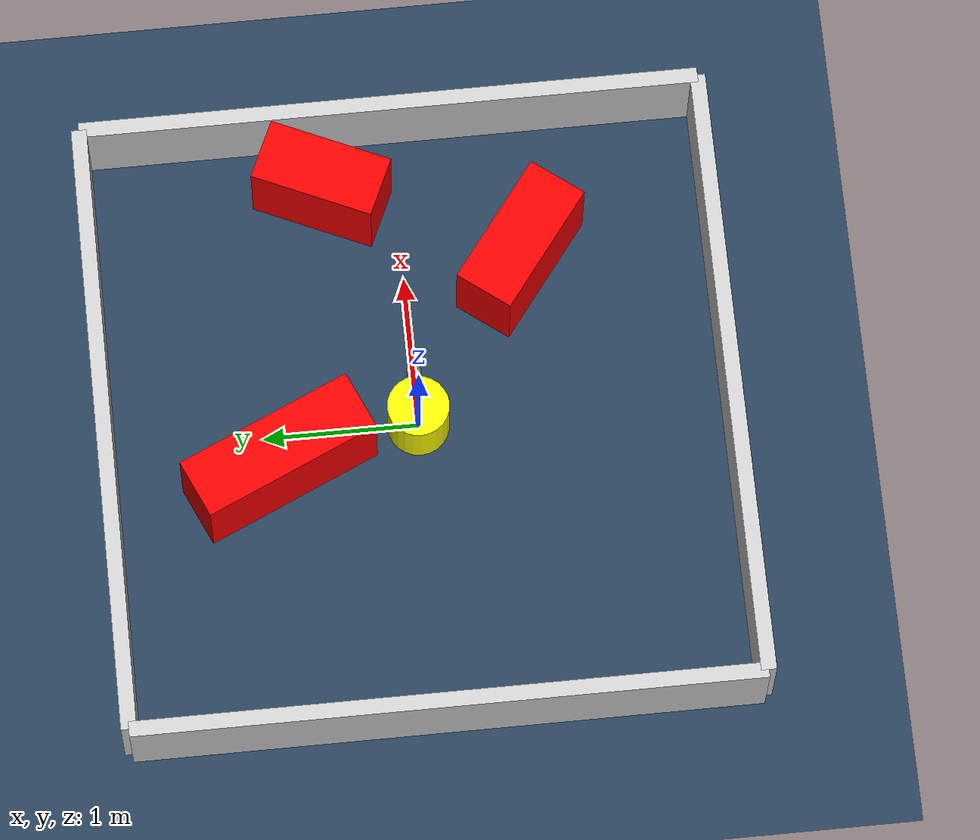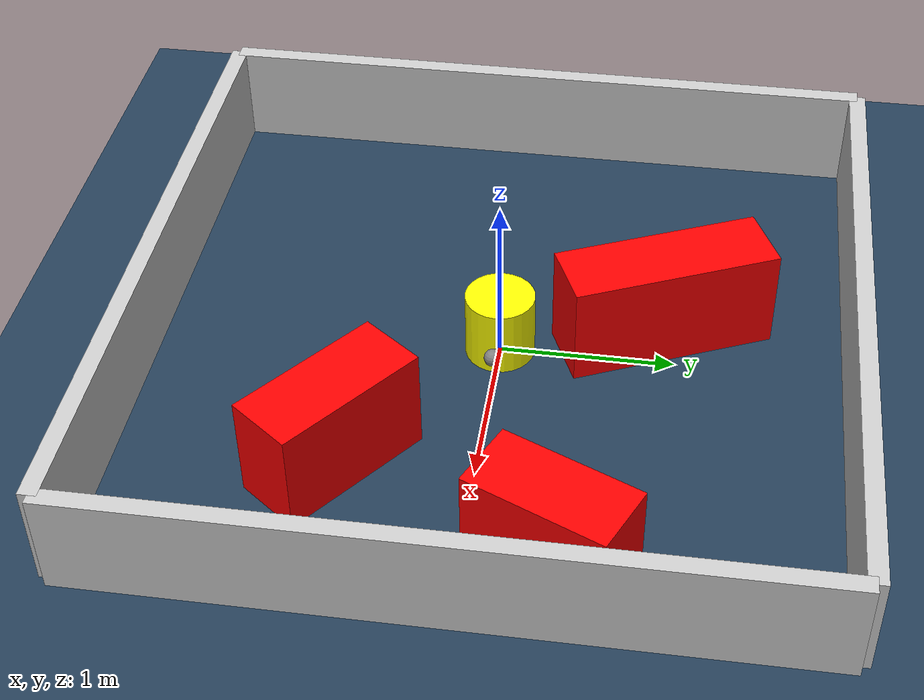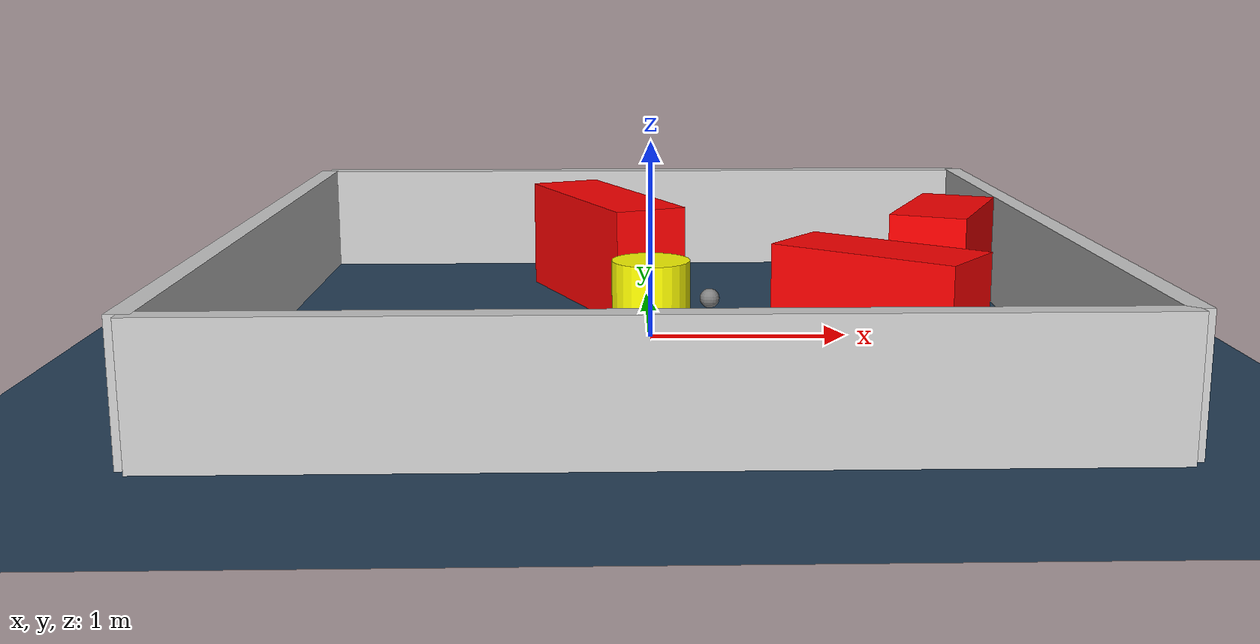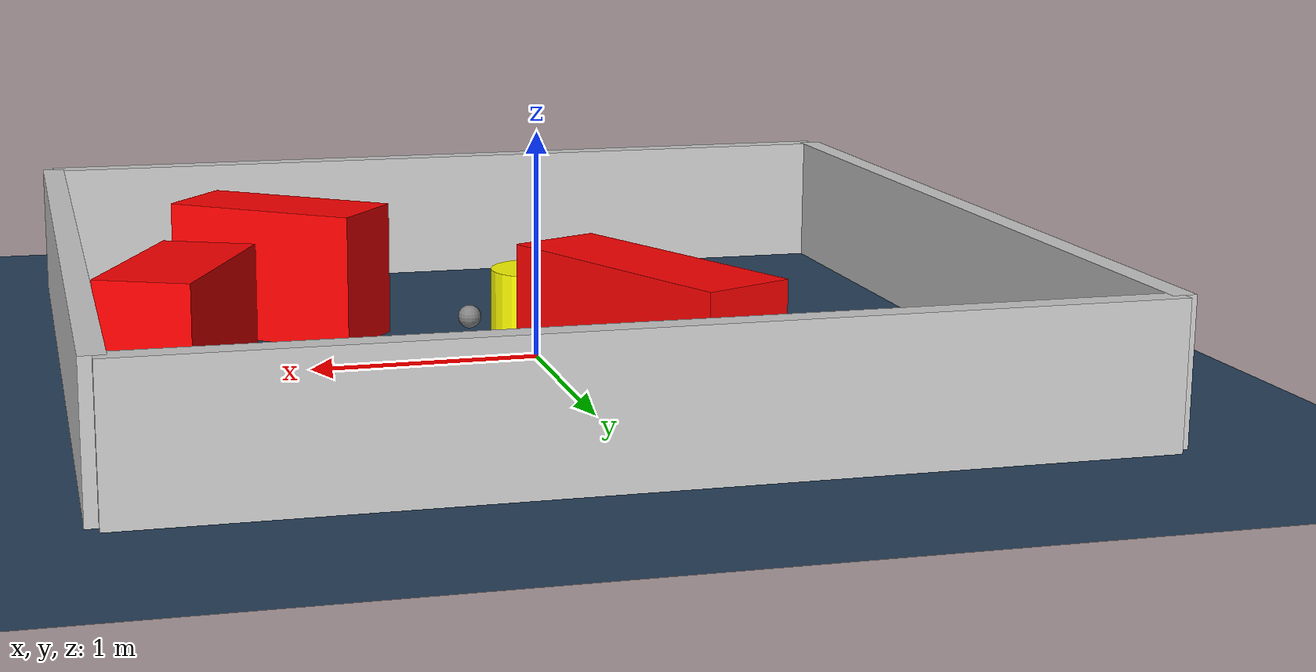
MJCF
<?xml version="1.0" ?>
<mujoco model="generated_environment">
  <option timestep="0.01" integrator="RK4" cone="elliptic"/>
  <default>
    <geom density="1"/>
  </default>
  <asset>
    <texture builtin="gradient" height="3072" rgb1="0.3 0.5 0.7" rgb2="0 0 0" type="skybox" width="512"/>
    <texture builtin="checker" height="300" mark="edge" markrgb="0.8 0.8 0.8" name="groundplane" rgb1="0.2 0.3 0.4" rgb2="0.1 0.2 0.3" type="2d" width="300"/>
    <material name="groundplane" reflectance="0.2" texrepeat="5 5" texture="groundplane" texuniform="true"/>
    <material name="robot" rgba="0.0 1.0 0.0 1"/>
  </asset>
  <worldbody>
    <light dir="0 0 -1" directional="true" pos="0 0 1.5"/>
    <geom condim="4" friction="1.0 0.005 0.001" material="groundplane" name="floor" size="0 0 0.05" type="plane"/>
    <body name="walls">
      <geom name="wall_1" condim="4" pos="-2.0 0.0 0.3" rgba="0.800000011920929 0.800000011920929 0.800000011920929 1.0" size="0.05 2.0 0.3" type="box"/>
      <geom name="wall_2" condim="4" pos="2.0 0.0 0.3" rgba="0.800000011920929 0.800000011920929 0.800000011920929 1.0" size="0.05 2.0 0.3" type="box"/>
      <geom name="wall_3" condim="4" pos="0.0 -2.0 0.3" rgba="0.800000011920929 0.800000011920929 0.800000011920929 1.0" size="2.0 0.05 0.3" type="box"/>
      <geom name="wall_4" condim="4" pos="0.0 2.0 0.3" rgba="0.800000011920929 0.800000011920929 0.800000011920929 1.0" size="2.0 0.05 0.3" type="box"/>
    </body>
    <body name="robot">
      <joint name="joint_x" type="slide" pos="0 0 0" axis="1 0 0"/>
      <joint name="joint_y" type="slide" pos="0 0 0" axis="0 1 0"/>
      <geom name="robot" type="sphere" pos="0.3 0.0 0.2" size="0.05" mass="5." friction="1.0 0.005 0.0001" condim="4" rgba="0.5 0.5 0.5 1.0"/>
      <site name="sensor_ball"/>
    </body>
    <body name="obstacle_movable_1">
      <geom name="obstacle_movable_1" condim="4" pos="0.0 0.0 0.2" euler="0 0 0.0" friction="1.0 0.005 0.001" rgba="1.0 1.0 0.0 1.0" size="0.2 0.2 0.0" type="cylinder" mass="0.1"/>
      <joint type="free"/>
    </body>
    <body name="obstacle_2_static">
      <geom name="obstacle_2_static" condim="4" pos="1.0252798522320439 -0.7556466027102386 0.3" euler="0 0 142.73309228392463" friction="1.0 0.005 0.001" rgba="1 0 0 1" size="0.45542486935115944 0.2 0.3" type="box"/>
    </body>
    <body name="obstacle_3_static">
      <geom name="obstacle_3_static" condim="4" pos="-0.23499280182687432 0.9114153660558635 0.3" euler="0 0 114.16621873603005" friction="1.0 0.005 0.001" rgba="1 0 0 1" size="0.6004358088491835 0.2 0.3" type="box"/>
    </body>
    <body name="obstacle_4_static">
      <geom name="obstacle_4_static" condim="4" pos="1.595960580887938 0.4740084030079845 0.3" euler="0 0 65.75409849781862" friction="1.0 0.005 0.001" rgba="1 0 0 1" size="0.40692142952818167 0.2 0.3" type="box"/>
    </body>
  </worldbody>
  <actuator>
    <motor name="actuator_x" joint="joint_x" gear="1" ctrlrange="-1 1"/>
    <motor name="actuator_y" joint="joint_y" gear="1" ctrlrange="-1 1"/>
  </actuator>
</mujoco>
